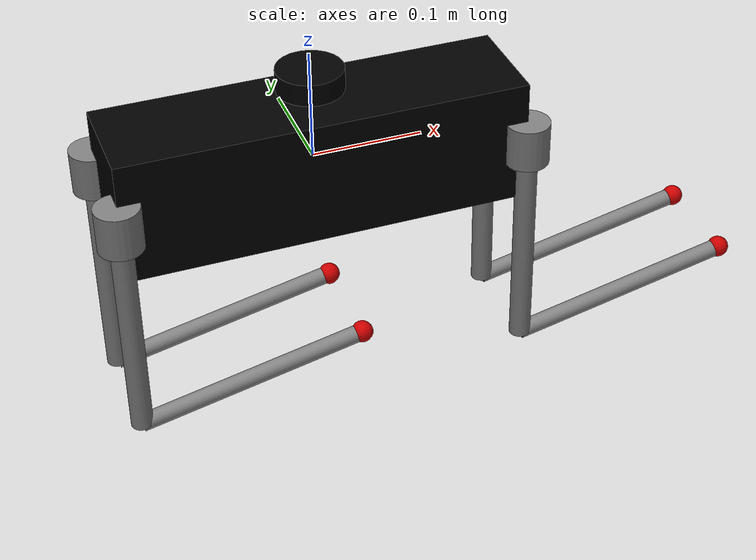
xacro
<?xml version="1.0"?>
<robot xmlns:xacro="http://www.ros.org/wiki/xacro" name="unitree_go2">

  <!-- Robot parameters -->
  <xacro:property name="body_length" value="0.366" />
  <xacro:property name="body_width" value="0.094" />
  <xacro:property name="body_height" value="0.114" />
  <xacro:property name="leg_length" value="0.213" />
  <xacro:property name="thigh_length" value="0.213" />
  <xacro:property name="calf_length" value="0.213" />

  <!-- Materials -->
  <material name="black">
    <color rgba="0.0 0.0 0.0 1.0"/>
  </material>

  <material name="white">
    <color rgba="1.0 1.0 1.0 1.0"/>
  </material>

  <material name="grey">
    <color rgba="0.5 0.5 0.5 1.0"/>
  </material>

  <material name="red">
    <color rgba="0.8 0.0 0.0 1.0"/>
  </material>

  <!-- Base link -->
  <link name="base_link">
    <visual>
      <origin xyz="0 0 0" rpy="0 0 0"/>
      <geometry>
        <box size="${body_length} ${body_width} ${body_height}"/>
      </geometry>
      <material name="black"/>
    </visual>
    <collision>
      <origin xyz="0 0 0" rpy="0 0 0"/>
      <geometry>
        <box size="${body_length} ${body_width} ${body_height}"/>
      </geometry>
    </collision>
    <inertial>
      <origin xyz="0 0 0" rpy="0 0 0"/>
      <mass value="15.0"/>
      <inertia ixx="0.07" ixy="0.0" ixz="0.0"
               iyy="0.26" iyz="0.0"
               izz="0.26"/>
    </inertial>
  </link>

  <!-- Front left leg -->
  <link name="FL_hip">
    <visual>
      <origin xyz="0 0 0" rpy="0 0 0"/>
      <geometry>
        <cylinder radius="0.02" length="0.04"/>
      </geometry>
      <material name="grey"/>
    </visual>
    <collision>
      <origin xyz="0 0 0" rpy="0 0 0"/>
      <geometry>
        <cylinder radius="0.02" length="0.04"/>
      </geometry>
    </collision>
    <inertial>
      <origin xyz="0 0 0" rpy="0 0 0"/>
      <mass value="0.696"/>
      <inertia ixx="0.001" ixy="0.0" ixz="0.0"
               iyy="0.001" iyz="0.0"
               izz="0.001"/>
    </inertial>
  </link>

  <link name="FL_thigh">
    <visual>
      <origin xyz="0 0 -0.1065" rpy="0 0 0"/>
      <geometry>
        <cylinder radius="0.01" length="${thigh_length}"/>
      </geometry>
      <material name="grey"/>
    </visual>
    <collision>
      <origin xyz="0 0 -0.1065" rpy="0 0 0"/>
      <geometry>
        <cylinder radius="0.01" length="${thigh_length}"/>
      </geometry>
    </collision>
    <inertial>
      <origin xyz="0 0 -0.1065" rpy="0 0 0"/>
      <mass value="1.013"/>
      <inertia ixx="0.005" ixy="0.0" ixz="0.0"
               iyy="0.005" iyz="0.0"
               izz="0.001"/>
    </inertial>
  </link>

  <link name="FL_calf">
    <visual>
      <origin xyz="0 0 -0.1065" rpy="0 0 0"/>
      <geometry>
        <cylinder radius="0.008" length="${calf_length}"/>
      </geometry>
      <material name="grey"/>
    </visual>
    <collision>
      <origin xyz="0 0 -0.1065" rpy="0 0 0"/>
      <geometry>
        <cylinder radius="0.008" length="${calf_length}"/>
      </geometry>
    </collision>
    <inertial>
      <origin xyz="0 0 -0.1065" rpy="0 0 0"/>
      <mass value="0.226"/>
      <inertia ixx="0.002" ixy="0.0" ixz="0.0"
               iyy="0.002" iyz="0.0"
               izz="0.0001"/>
    </inertial>
  </link>

  <link name="FL_foot">
    <visual>
      <origin xyz="0 0 0" rpy="0 0 0"/>
      <geometry>
        <sphere radius="0.01"/>
      </geometry>
      <material name="red"/>
    </visual>
    <collision>
      <origin xyz="0 0 0" rpy="0 0 0"/>
      <geometry>
        <sphere radius="0.01"/>
      </geometry>
    </collision>
    <inertial>
      <origin xyz="0 0 0" rpy="0 0 0"/>
      <mass value="0.05"/>
      <inertia ixx="0.00001" ixy="0.0" ixz="0.0"
               iyy="0.00001" iyz="0.0"
               izz="0.00001"/>
    </inertial>
  </link>

  <!-- Front right leg -->
  <link name="FR_hip">
    <visual>
      <origin xyz="0 0 0" rpy="0 0 0"/>
      <geometry>
        <cylinder radius="0.02" length="0.04"/>
      </geometry>
      <material name="grey"/>
    </visual>
    <collision>
      <origin xyz="0 0 0" rpy="0 0 0"/>
      <geometry>
        <cylinder radius="0.02" length="0.04"/>
      </geometry>
    </collision>
    <inertial>
      <origin xyz="0 0 0" rpy="0 0 0"/>
      <mass value="0.696"/>
      <inertia ixx="0.001" ixy="0.0" ixz="0.0"
               iyy="0.001" iyz="0.0"
               izz="0.001"/>
    </inertial>
  </link>

  <link name="FR_thigh">
    <visual>
      <origin xyz="0 0 -0.1065" rpy="0 0 0"/>
      <geometry>
        <cylinder radius="0.01" length="${thigh_length}"/>
      </geometry>
      <material name="grey"/>
    </visual>
    <collision>
      <origin xyz="0 0 -0.1065" rpy="0 0 0"/>
      <geometry>
        <cylinder radius="0.01" length="${thigh_length}"/>
      </geometry>
    </collision>
    <inertial>
      <origin xyz="0 0 -0.1065" rpy="0 0 0"/>
      <mass value="1.013"/>
      <inertia ixx="0.005" ixy="0.0" ixz="0.0"
               iyy="0.005" iyz="0.0"
               izz="0.001"/>
    </inertial>
  </link>

  <link name="FR_calf">
    <visual>
      <origin xyz="0 0 -0.1065" rpy="0 0 0"/>
      <geometry>
        <cylinder radius="0.008" length="${calf_length}"/>
      </geometry>
      <material name="grey"/>
    </visual>
    <collision>
      <origin xyz="0 0 -0.1065" rpy="0 0 0"/>
      <geometry>
        <cylinder radius="0.008" length="${calf_length}"/>
      </geometry>
    </collision>
    <inertial>
      <origin xyz="0 0 -0.1065" rpy="0 0 0"/>
      <mass value="0.226"/>
      <inertia ixx="0.002" ixy="0.0" ixz="0.0"
               iyy="0.002" iyz="0.0"
               izz="0.0001"/>
    </inertial>
  </link>

  <link name="FR_foot">
    <visual>
      <origin xyz="0 0 0" rpy="0 0 0"/>
      <geometry>
        <sphere radius="0.01"/>
      </geometry>
      <material name="red"/>
    </visual>
    <collision>
      <origin xyz="0 0 0" rpy="0 0 0"/>
      <geometry>
        <sphere radius="0.01"/>
      </geometry>
    </collision>
    <inertial>
      <origin xyz="0 0 0" rpy="0 0 0"/>
      <mass value="0.05"/>
      <inertia ixx="0.00001" ixy="0.0" ixz="0.0"
               iyy="0.00001" iyz="0.0"
               izz="0.00001"/>
    </inertial>
  </link>

  <!-- Rear left leg -->
  <link name="RL_hip">
    <visual>
      <origin xyz="0 0 0" rpy="0 0 0"/>
      <geometry>
        <cylinder radius="0.02" length="0.04"/>
      </geometry>
      <material name="grey"/>
    </visual>
    <collision>
      <origin xyz="0 0 0" rpy="0 0 0"/>
      <geometry>
        <cylinder radius="0.02" length="0.04"/>
      </geometry>
    </collision>
    <inertial>
      <origin xyz="0 0 0" rpy="0 0 0"/>
      <mass value="0.696"/>
      <inertia ixx="0.001" ixy="0.0" ixz="0.0"
               iyy="0.001" iyz="0.0"
               izz="0.001"/>
    </inertial>
  </link>

  <link name="RL_thigh">
    <visual>
      <origin xyz="0 0 -0.1065" rpy="0 0 0"/>
      <geometry>
        <cylinder radius="0.01" length="${thigh_length}"/>
      </geometry>
      <material name="grey"/>
    </visual>
    <collision>
      <origin xyz="0 0 -0.1065" rpy="0 0 0"/>
      <geometry>
        <cylinder radius="0.01" length="${thigh_length}"/>
      </geometry>
    </collision>
    <inertial>
      <origin xyz="0 0 -0.1065" rpy="0 0 0"/>
      <mass value="1.013"/>
      <inertia ixx="0.005" ixy="0.0" ixz="0.0"
               iyy="0.005" iyz="0.0"
               izz="0.001"/>
    </inertial>
  </link>

  <link name="RL_calf">
    <visual>
      <origin xyz="0 0 -0.1065" rpy="0 0 0"/>
      <geometry>
        <cylinder radius="0.008" length="${calf_length}"/>
      </geometry>
      <material name="grey"/>
    </visual>
    <collision>
      <origin xyz="0 0 -0.1065" rpy="0 0 0"/>
      <geometry>
        <cylinder radius="0.008" length="${calf_length}"/>
      </geometry>
    </collision>
    <inertial>
      <origin xyz="0 0 -0.1065" rpy="0 0 0"/>
      <mass value="0.226"/>
      <inertia ixx="0.002" ixy="0.0" ixz="0.0"
               iyy="0.002" iyz="0.0"
               izz="0.0001"/>
    </inertial>
  </link>

  <link name="RL_foot">
    <visual>
      <origin xyz="0 0 0" rpy="0 0 0"/>
      <geometry>
        <sphere radius="0.01"/>
      </geometry>
      <material name="red"/>
    </visual>
    <collision>
      <origin xyz="0 0 0" rpy="0 0 0"/>
      <geometry>
        <sphere radius="0.01"/>
      </geometry>
    </collision>
    <inertial>
      <origin xyz="0 0 0" rpy="0 0 0"/>
      <mass value="0.05"/>
      <inertia ixx="0.00001" ixy="0.0" ixz="0.0"
               iyy="0.00001" iyz="0.0"
               izz="0.00001"/>
    </inertial>
  </link>

  <!-- Rear right leg -->
  <link name="RR_hip">
    <visual>
      <origin xyz="0 0 0" rpy="0 0 0"/>
      <geometry>
        <cylinder radius="0.02" length="0.04"/>
      </geometry>
      <material name="grey"/>
    </visual>
    <collision>
      <origin xyz="0 0 0" rpy="0 0 0"/>
      <geometry>
        <cylinder radius="0.02" length="0.04"/>
      </geometry>
    </collision>
    <inertial>
      <origin xyz="0 0 0" rpy="0 0 0"/>
      <mass value="0.696"/>
      <inertia ixx="0.001" ixy="0.0" ixz="0.0"
               iyy="0.001" iyz="0.0"
               izz="0.001"/>
    </inertial>
  </link>

  <link name="RR_thigh">
    <visual>
      <origin xyz="0 0 -0.1065" rpy="0 0 0"/>
      <geometry>
        <cylinder radius="0.01" length="${thigh_length}"/>
      </geometry>
      <material name="grey"/>
    </visual>
    <collision>
      <origin xyz="0 0 -0.1065" rpy="0 0 0"/>
      <geometry>
        <cylinder radius="0.01" length="${thigh_length}"/>
      </geometry>
    </collision>
    <inertial>
      <origin xyz="0 0 -0.1065" rpy="0 0 0"/>
      <mass value="1.013"/>
      <inertia ixx="0.005" ixy="0.0" ixz="0.0"
               iyy="0.005" iyz="0.0"
               izz="0.001"/>
    </inertial>
  </link>

  <link name="RR_calf">
    <visual>
      <origin xyz="0 0 -0.1065" rpy="0 0 0"/>
      <geometry>
        <cylinder radius="0.008" length="${calf_length}"/>
      </geometry>
      <material name="grey"/>
    </visual>
    <collision>
      <origin xyz="0 0 -0.1065" rpy="0 0 0"/>
      <geometry>
        <cylinder radius="0.008" length="${calf_length}"/>
      </geometry>
    </collision>
    <inertial>
      <origin xyz="0 0 -0.1065" rpy="0 0 0"/>
      <mass value="0.226"/>
      <inertia ixx="0.002" ixy="0.0" ixz="0.0"
               iyy="0.002" iyz="0.0"
               izz="0.0001"/>
    </inertial>
  </link>

  <link name="RR_foot">
    <visual>
      <origin xyz="0 0 0" rpy="0 0 0"/>
      <geometry>
        <sphere radius="0.01"/>
      </geometry>
      <material name="red"/>
    </visual>
    <collision>
      <origin xyz="0 0 0" rpy="0 0 0"/>
      <geometry>
        <sphere radius="0.01"/>
      </geometry>
    </collision>
    <inertial>
      <origin xyz="0 0 0" rpy="0 0 0"/>
      <mass value="0.05"/>
      <inertia ixx="0.00001" ixy="0.0" ixz="0.0"
               iyy="0.00001" iyz="0.0"
               izz="0.00001"/>
    </inertial>
  </link>

  <!-- Joints -->
  <!-- Front Left Leg Joints -->
  <joint name="FL_hip_joint" type="revolute">
    <parent link="base_link"/>
    <child link="FL_hip"/>
    <origin xyz="0.183 0.047 0" rpy="0 0 0"/>
    <axis xyz="1 0 0"/>
    <limit lower="-1.047" upper="1.047" effort="23.7" velocity="30.1"/>
  </joint>

  <joint name="FL_thigh_joint" type="revolute">
    <parent link="FL_hip"/>
    <child link="FL_thigh"/>
    <origin xyz="0 0 0" rpy="0 0 0"/>
    <axis xyz="0 1 0"/>
    <limit lower="-0.663" upper="2.966" effort="23.7" velocity="30.1"/>
  </joint>

  <joint name="FL_calf_joint" type="revolute">
    <parent link="FL_thigh"/>
    <child link="FL_calf"/>
    <origin xyz="0 0 -0.213" rpy="0 0 0"/>
    <axis xyz="0 1 0"/>
    <limit lower="-2.721" upper="-0.837" effort="35.55" velocity="20.06"/>
  </joint>

  <joint name="FL_foot_joint" type="fixed">
    <parent link="FL_calf"/>
    <child link="FL_foot"/>
    <origin xyz="0 0 -0.213" rpy="0 0 0"/>
  </joint>

  <!-- Front Right Leg Joints -->
  <joint name="FR_hip_joint" type="revolute">
    <parent link="base_link"/>
    <child link="FR_hip"/>
    <origin xyz="0.183 -0.047 0" rpy="0 0 0"/>
    <axis xyz="1 0 0"/>
    <limit lower="-1.047" upper="1.047" effort="23.7" velocity="30.1"/>
  </joint>

  <joint name="FR_thigh_joint" type="revolute">
    <parent link="FR_hip"/>
    <child link="FR_thigh"/>
    <origin xyz="0 0 0" rpy="0 0 0"/>
    <axis xyz="0 1 0"/>
    <limit lower="-0.663" upper="2.966" effort="23.7" velocity="30.1"/>
  </joint>

  <joint name="FR_calf_joint" type="revolute">
    <parent link="FR_thigh"/>
    <child link="FR_calf"/>
    <origin xyz="0 0 -0.213" rpy="0 0 0"/>
    <axis xyz="0 1 0"/>
    <limit lower="-2.721" upper="-0.837" effort="35.55" velocity="20.06"/>
  </joint>

  <joint name="FR_foot_joint" type="fixed">
    <parent link="FR_calf"/>
    <child link="FR_foot"/>
    <origin xyz="0 0 -0.213" rpy="0 0 0"/>
  </joint>

  <!-- Rear Left Leg Joints -->
  <joint name="RL_hip_joint" type="revolute">
    <parent link="base_link"/>
    <child link="RL_hip"/>
    <origin xyz="-0.183 0.047 0" rpy="0 0 0"/>
    <axis xyz="1 0 0"/>
    <limit lower="-1.047" upper="1.047" effort="23.7" velocity="30.1"/>
  </joint>

  <joint name="RL_thigh_joint" type="revolute">
    <parent link="RL_hip"/>
    <child link="RL_thigh"/>
    <origin xyz="0 0 0" rpy="0 0 0"/>
    <axis xyz="0 1 0"/>
    <limit lower="-2.966" upper="0.663" effort="23.7" velocity="30.1"/>
  </joint>

  <joint name="RL_calf_joint" type="revolute">
    <parent link="RL_thigh"/>
    <child link="RL_calf"/>
    <origin xyz="0 0 -0.213" rpy="0 0 0"/>
    <axis xyz="0 1 0"/>
    <limit lower="-2.721" upper="-0.837" effort="35.55" velocity="20.06"/>
  </joint>

  <joint name="RL_foot_joint" type="fixed">
    <parent link="RL_calf"/>
    <child link="RL_foot"/>
    <origin xyz="0 0 -0.213" rpy="0 0 0"/>
  </joint>

  <!-- Rear Right Leg Joints -->
  <joint name="RR_hip_joint" type="revolute">
    <parent link="base_link"/>
    <child link="RR_hip"/>
    <origin xyz="-0.183 -0.047 0" rpy="0 0 0"/>
    <axis xyz="1 0 0"/>
    <limit lower="-1.047" upper="1.047" effort="23.7" velocity="30.1"/>
  </joint>

  <joint name="RR_thigh_joint" type="revolute">
    <parent link="RR_hip"/>
    <child link="RR_thigh"/>
    <origin xyz="0 0 0" rpy="0 0 0"/>
    <axis xyz="0 1 0"/>
    <limit lower="-2.966" upper="0.663" effort="23.7" velocity="30.1"/>
  </joint>

  <joint name="RR_calf_joint" type="revolute">
    <parent link="RR_thigh"/>
    <child link="RR_calf"/>
    <origin xyz="0 0 -0.213" rpy="0 0 0"/>
    <axis xyz="0 1 0"/>
    <limit lower="-2.721" upper="-0.837" effort="35.55" velocity="20.06"/>
  </joint>

  <joint name="RR_foot_joint" type="fixed">
    <parent link="RR_calf"/>
    <child link="RR_foot"/>
    <origin xyz="0 0 -0.213" rpy="0 0 0"/>
  </joint>

  <!-- RPLiDAR mount -->
  <link name="lidar_mount">
    <visual>
      <origin xyz="0 0 0" rpy="0 0 0"/>
      <geometry>
        <cylinder radius="0.03" length="0.02"/>
      </geometry>
      <material name="black"/>
    </visual>
    <collision>
      <origin xyz="0 0 0" rpy="0 0 0"/>
      <geometry>
        <cylinder radius="0.03" length="0.02"/>
      </geometry>
    </collision>
    <inertial>
      <origin xyz="0 0 0" rpy="0 0 0"/>
      <mass value="0.1"/>
      <inertia ixx="0.0001" ixy="0.0" ixz="0.0"
               iyy="0.0001" iyz="0.0"
               izz="0.0001"/>
    </inertial>
  </link>

  <joint name="lidar_mount_joint" type="fixed">
    <parent link="base_link"/>
    <child link="lidar_mount"/>
    <origin xyz="0 0 0.077" rpy="0 0 0"/>
  </joint>

  <!-- RPLiDAR sensor frame (matches your launch file configuration) -->
  <link name="laser"/>

  <joint name="laser_joint" type="fixed">
    <parent link="lidar_mount"/>
    <child link="laser"/>
    <origin xyz="0 0 0.01" rpy="0 0 3.14159"/>
  </joint>

</robot>
